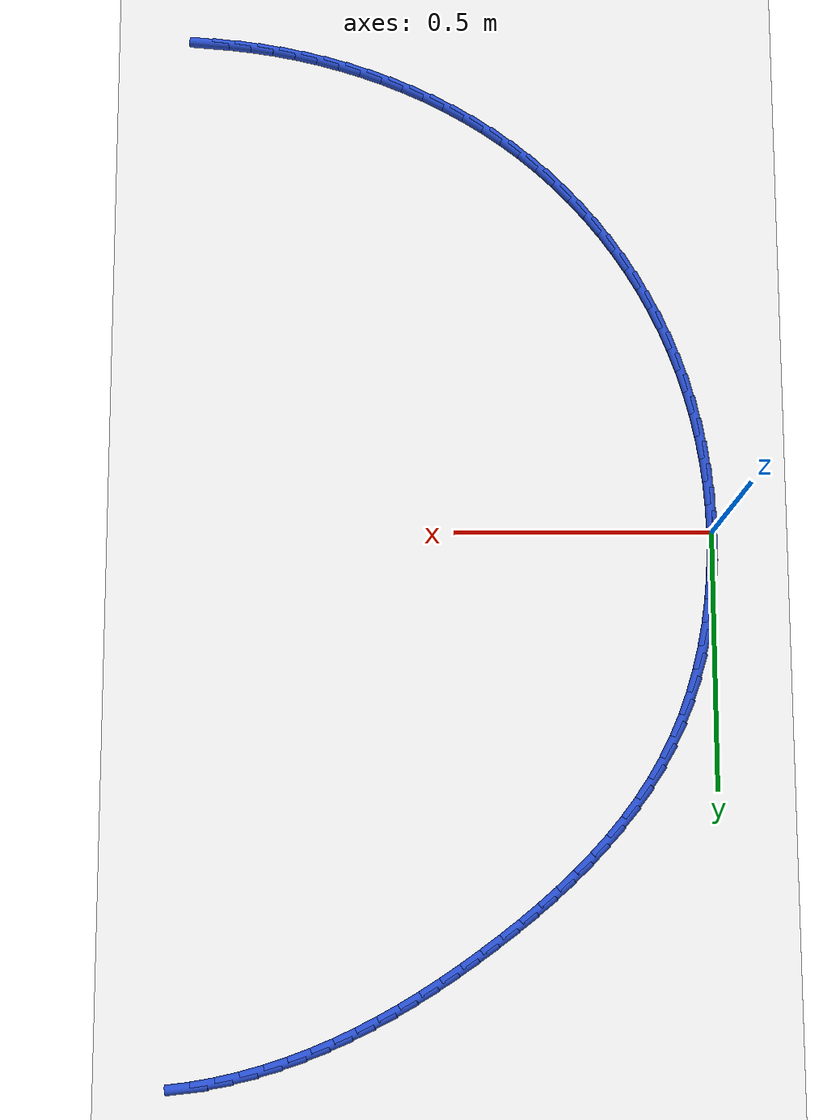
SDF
<sdf version="1.6">
 <world name="default">
  <model name="ground_plane">
   <static>1</static>
   <link name="link">
    <collision name="collision">
     <geometry><plane><normal>0 0 1</normal><size>100 100</size></plane></geometry>
     <surface><friction><ode><mu>100</mu><mu2>50</mu2></ode></friction></surface>
    </collision>
    <visual name="visual">
     <cast_shadows>0</cast_shadows>
     <geometry><plane><normal>0 0 1</normal><size>100 100</size></plane></geometry>
     <material>
      <script><uri>file://media/materials/scripts/gazebo.material</uri><name>Gazebo/WhiteGlow</name></script>
     </material>
    </visual>
   </link>
  </model>
  <model name="line">
   <link name="link_0">
    <pose>6.765421556309548e-17 2.7755575615628914e-17 0.01 0 1.57 1.5584884787986761</pose>
    <collision name="collision">
     <geometry><cylinder><radius>0.01</radius><length>0.08</length></cylinder></geometry>
    </collision>
    <visual name="visual">
     <material>
      <script><name>Gazebo/Blue</name><uri>file://media/materials/scripts/gazebo.material</uri></script>
     </material>
     <geometry><cylinder><radius>0.01</radius><length>0.08</length></cylinder></geometry>
    </visual>
   </link>
   <link name="link_1">
    <pose>0.0005716995542776566 0.046447655719377944 0.01 0 1.57 1.514196573088559</pose>
    <collision name="collision">
     <geometry><cylinder><radius>0.01</radius><length>0.08</length></cylinder></geometry>
    </collision>
    <visual name="visual">
     <material>
      <script><name>Gazebo/Blue</name><uri>file://media/materials/scripts/gazebo.material</uri></script>
     </material>
     <geometry><cylinder><radius>0.01</radius><length>0.08</length></cylinder></geometry>
    </visual>
   </link>
   <link name="link_2">
    <pose>0.0032023153459476506 0.0928755274340366 0.01 0 1.57 1.4686242328260348</pose>
    <collision name="collision">
     <geometry><cylinder><radius>0.01</radius><length>0.08</length></cylinder></geometry>
    </collision>
    <visual name="visual">
     <material>
      <script><name>Gazebo/Blue</name><uri>file://media/materials/scripts/gazebo.material</uri></script>
     </material>
     <geometry><cylinder><radius>0.01</radius><length>0.08</length></cylinder></geometry>
    </visual>
   </link>
   <link name="link_3">
    <pose>0.00794377737591002 0.1391205580400249 0.01 0 1.57 1.4214937126309368</pose>
    <collision name="collision">
     <geometry><cylinder><radius>0.01</radius><length>0.08</length></cylinder></geometry>
    </collision>
    <visual name="visual">
     <material>
      <script><name>Gazebo/Blue</name><uri>file://media/materials/scripts/gazebo.material</uri></script>
     </material>
     <geometry><cylinder><radius>0.01</radius><length>0.08</length></cylinder></geometry>
    </visual>
   </link>
   <link name="link_4">
    <pose>0.01484801564506474 0.18501969043339178 0.01 0 1.57 1.3725343054478156</pose>
    <collision name="collision">
     <geometry><cylinder><radius>0.01</radius><length>0.08</length></cylinder></geometry>
    </collision>
    <visual name="visual">
     <material>
      <script><name>Gazebo/Blue</name><uri>file://media/materials/scripts/gazebo.material</uri></script>
     </material>
     <geometry><cylinder><radius>0.01</radius><length>0.08</length></cylinder></geometry>
    </visual>
   </link>
   <link name="link_5">
    <pose>0.0239669601543118 0.2304098675101861 0.01 0 1.57 1.3214859028333439</pose>
    <collision name="collision">
     <geometry><cylinder><radius>0.01</radius><length>0.08</length></cylinder></geometry>
    </collision>
    <visual name="visual">
     <material>
      <script><name>Gazebo/Blue</name><uri>file://media/materials/scripts/gazebo.material</uri></script>
     </material>
     <geometry><cylinder><radius>0.01</radius><length>0.08</length></cylinder></geometry>
    </visual>
   </link>
   <link name="link_6">
    <pose>0.03535254090455118 0.27512803216645687 0.01 0 1.57 1.2681049622585925</pose>
    <collision name="collision">
     <geometry><cylinder><radius>0.01</radius><length>0.08</length></cylinder></geometry>
    </collision>
    <visual name="visual">
     <material>
      <script><name>Gazebo/Blue</name><uri>file://media/materials/scripts/gazebo.material</uri></script>
     </material>
     <geometry><cylinder><radius>0.01</radius><length>0.08</length></cylinder></geometry>
    </visual>
   </link>
   <link name="link_7">
    <pose>0.049056687896682855 0.31901112729825304 0.01 0 1.57 1.2121732647211978</pose>
    <collision name="collision">
     <geometry><cylinder><radius>0.01</radius><length>0.08</length></cylinder></geometry>
    </collision>
    <visual name="visual">
     <material>
      <script><name>Gazebo/Blue</name><uri>file://media/materials/scripts/gazebo.material</uri></script>
     </material>
     <geometry><cylinder><radius>0.01</radius><length>0.08</length></cylinder></geometry>
    </visual>
   </link>
   <link name="link_8">
    <pose>0.0651313311316068 0.36189609580162335 0.01 0 1.57 1.1535097312707923</pose>
    <collision name="collision">
     <geometry><cylinder><radius>0.01</radius><length>0.08</length></cylinder></geometry>
    </collision>
    <visual name="visual">
     <material>
      <script><name>Gazebo/Blue</name><uri>file://media/materials/scripts/gazebo.material</uri></script>
     </material>
     <geometry><cylinder><radius>0.01</radius><length>0.08</length></cylinder></geometry>
    </visual>
   </link>
   <link name="link_9">
    <pose>0.08362840061022302 0.403619880572617 0.01 0 1.57 1.0920042835123835</pose>
    <collision name="collision">
     <geometry><cylinder><radius>0.01</radius><length>0.08</length></cylinder></geometry>
    </collision>
    <visual name="visual">
     <material>
      <script><name>Gazebo/Blue</name><uri>file://media/materials/scripts/gazebo.material</uri></script>
     </material>
     <geometry><cylinder><radius>0.01</radius><length>0.08</length></cylinder></geometry>
    </visual>
   </link>
   <link name="link_10">
    <pose>0.10459915249809948 0.4440200023535437 0.01 0 1.57 1.0298332348828487</pose>
    <collision name="collision">
     <geometry><cylinder><radius>0.01</radius><length>0.08</length></cylinder></geometry>
    </collision>
    <visual name="visual">
     <material>
      <script><name>Gazebo/Blue</name><uri>file://media/materials/scripts/gazebo.material</uri></script>
     </material>
     <geometry><cylinder><radius>0.01</radius><length>0.08</length></cylinder></geometry>
    </visual>
   </link>
   <link name="link_11">
    <pose>0.12801661715924728 0.48300106428027234 0.01 0 1.57 0.9714010375299906</pose>
    <collision name="collision">
     <geometry><cylinder><radius>0.01</radius><length>0.08</length></cylinder></geometry>
    </collision>
    <visual name="visual">
     <material>
      <script><name>Gazebo/Blue</name><uri>file://media/materials/scripts/gazebo.material</uri></script>
     </material>
     <geometry><cylinder><radius>0.01</radius><length>0.08</length></cylinder></geometry>
    </visual>
   </link>
   <link name="link_12">
    <pose>0.15370364644644152 0.5205964547972824 0.01 0 1.57 0.9173242000535418</pose>
    <collision name="collision">
     <geometry><cylinder><radius>0.01</radius><length>0.08</length></cylinder></geometry>
    </collision>
    <visual name="visual">
     <material>
      <script><name>Gazebo/Blue</name><uri>file://media/materials/scripts/gazebo.material</uri></script>
     </material>
     <geometry><cylinder><radius>0.01</radius><length>0.08</length></cylinder></geometry>
    </visual>
   </link>
   <link name="link_13">
    <pose>0.18146607908762974 0.5568541519232436 0.01 0 1.57 0.8676171396973472</pose>
    <collision name="collision">
     <geometry><cylinder><radius>0.01</radius><length>0.08</length></cylinder></geometry>
    </collision>
    <visual name="visual">
     <material>
      <script><name>Gazebo/Blue</name><uri>file://media/materials/scripts/gazebo.material</uri></script>
     </material>
     <geometry><cylinder><radius>0.01</radius><length>0.08</length></cylinder></geometry>
    </visual>
   </link>
   <link name="link_14">
    <pose>0.21110975381075933 0.5918221336768252 0.01 0 1.57 0.8222029213232607</pose>
    <collision name="collision">
     <geometry><cylinder><radius>0.01</radius><length>0.08</length></cylinder></geometry>
    </collision>
    <visual name="visual">
     <material>
      <script><name>Gazebo/Blue</name><uri>file://media/materials/scripts/gazebo.material</uri></script>
     </material>
     <geometry><cylinder><radius>0.01</radius><length>0.08</length></cylinder></geometry>
    </visual>
   </link>
   <link name="link_15">
    <pose>0.2424405093437778 0.6255483780766966 0.01 0 1.57 0.7809427596734648</pose>
    <collision name="collision">
     <geometry><cylinder><radius>0.01</radius><length>0.08</length></cylinder></geometry>
    </collision>
    <visual name="visual">
     <material>
      <script><name>Gazebo/Blue</name><uri>file://media/materials/scripts/gazebo.material</uri></script>
     </material>
     <geometry><cylinder><radius>0.01</radius><length>0.08</length></cylinder></geometry>
    </visual>
   </link>
   <link name="link_16">
    <pose>0.27526418441463263 0.6580808631415275 0.01 0 1.57 0.7436613765094798</pose>
    <collision name="collision">
     <geometry><cylinder><radius>0.01</radius><length>0.08</length></cylinder></geometry>
    </collision>
    <visual name="visual">
     <material>
      <script><name>Gazebo/Blue</name><uri>file://media/materials/scripts/gazebo.material</uri></script>
     </material>
     <geometry><cylinder><radius>0.01</radius><length>0.08</length></cylinder></geometry>
    </visual>
   </link>
   <link name="link_17">
    <pose>0.309386617751271 0.6894675668899863 0.01 0 1.57 0.710167448398299</pose>
    <collision name="collision">
     <geometry><cylinder><radius>0.01</radius><length>0.08</length></cylinder></geometry>
    </collision>
    <visual name="visual">
     <material>
      <script><name>Gazebo/Blue</name><uri>file://media/materials/scripts/gazebo.material</uri></script>
     </material>
     <geometry><cylinder><radius>0.01</radius><length>0.08</length></cylinder></geometry>
    </visual>
   </link>
   <link name="link_18">
    <pose>0.34461364808164086 0.7197564673407438 0.01 0 1.57 0.6802693483953398</pose>
    <collision name="collision">
     <geometry><cylinder><radius>0.01</radius><length>0.08</length></cylinder></geometry>
    </collision>
    <visual name="visual">
     <material>
      <script><name>Gazebo/Blue</name><uri>file://media/materials/scripts/gazebo.material</uri></script>
     </material>
     <geometry><cylinder><radius>0.01</radius><length>0.08</length></cylinder></geometry>
    </visual>
   </link>
   <link name="link_19">
    <pose>0.38075111413368906 0.7489955425124685 0.01 0 1.57 0.6537868988125435</pose>
    <collision name="collision">
     <geometry><cylinder><radius>0.01</radius><length>0.08</length></cylinder></geometry>
    </collision>
    <visual name="visual">
     <material>
      <script><name>Gazebo/Blue</name><uri>file://media/materials/scripts/gazebo.material</uri></script>
     </material>
     <geometry><cylinder><radius>0.01</radius><length>0.08</length></cylinder></geometry>
    </visual>
   </link>
   <link name="link_20">
    <pose>0.4176048546353637 0.77723277042383 0.01 0 1.57 0.6305543245731808</pose>
    <collision name="collision">
     <geometry><cylinder><radius>0.01</radius><length>0.08</length></cylinder></geometry>
    </collision>
    <visual name="visual">
     <material>
      <script><name>Gazebo/Blue</name><uri>file://media/materials/scripts/gazebo.material</uri></script>
     </material>
     <geometry><cylinder><radius>0.01</radius><length>0.08</length></cylinder></geometry>
    </visual>
   </link>
   <link name="link_21">
    <pose>0.45498097439960244 0.8045159953283338 0.01 0 1.57 0.6088742742741762</pose>
    <collision name="collision">
     <geometry><cylinder><radius>0.01</radius><length>0.08</length></cylinder></geometry>
    </collision>
    <visual name="visual">
     <material>
      <script><name>Gazebo/Blue</name><uri>file://media/materials/scripts/gazebo.material</uri></script>
     </material>
     <geometry><cylinder><radius>0.01</radius><length>0.08</length></cylinder></geometry>
    </visual>
   </link>
   <link name="link_22">
    <pose>0.49275869448761056 0.8308563047766697 0.01 0 1.57 0.5850038427479485</pose>
    <collision name="collision">
     <geometry><cylinder><radius>0.01</radius><length>0.08</length></cylinder></geometry>
    </collision>
    <visual name="visual">
     <material>
      <script><name>Gazebo/Blue</name><uri>file://media/materials/scripts/gazebo.material</uri></script>
     </material>
     <geometry><cylinder><radius>0.01</radius><length>0.08</length></cylinder></geometry>
    </visual>
   </link>
   <link name="link_23">
    <pose>0.5309894540610389 0.8561782095368335 0.01 0 1.57 0.558423854053083</pose>
    <collision name="collision">
     <geometry><cylinder><radius>0.01</radius><length>0.08</length></cylinder></geometry>
    </collision>
    <visual name="visual">
     <material>
      <script><name>Gazebo/Blue</name><uri>file://media/materials/scripts/gazebo.material</uri></script>
     </material>
     <geometry><cylinder><radius>0.01</radius><length>0.08</length></cylinder></geometry>
    </visual>
   </link>
   <link name="link_24">
    <pose>0.5697494710328551 0.8803937637037849 0.01 0 1.57 0.5291740657783479</pose>
    <collision name="collision">
     <geometry><cylinder><radius>0.01</radius><length>0.08</length></cylinder></geometry>
    </collision>
    <visual name="visual">
     <material>
      <script><name>Gazebo/Blue</name><uri>file://media/materials/scripts/gazebo.material</uri></script>
     </material>
     <geometry><cylinder><radius>0.01</radius><length>0.08</length></cylinder></geometry>
    </visual>
   </link>
   <link name="link_25">
    <pose>0.6091149633160268 0.9034150213724829 0.01 0 1.57 0.4973256388814062</pose>
    <collision name="collision">
     <geometry><cylinder><radius>0.01</radius><length>0.08</length></cylinder></geometry>
    </collision>
    <visual name="visual">
     <material>
      <script><name>Gazebo/Blue</name><uri>file://media/materials/scripts/gazebo.material</uri></script>
     </material>
     <geometry><cylinder><radius>0.01</radius><length>0.08</length></cylinder></geometry>
    </visual>
   </link>
   <link name="link_26">
    <pose>0.6491621488235214 0.9251540366378873 0.01 0 1.57 0.46298626982880187</pose>
    <collision name="collision">
     <geometry><cylinder><radius>0.01</radius><length>0.08</length></cylinder></geometry>
    </collision>
    <visual name="visual">
     <material>
      <script><name>Gazebo/Blue</name><uri>file://media/materials/scripts/gazebo.material</uri></script>
     </material>
     <geometry><cylinder><radius>0.01</radius><length>0.08</length></cylinder></geometry>
    </visual>
   </link>
   <link name="link_27">
    <pose>0.6899672454683065 0.9455228635949577 0.01 0 1.57 0.42630445086969593</pose>
    <collision name="collision">
     <geometry><cylinder><radius>0.01</radius><length>0.08</length></cylinder></geometry>
    </collision>
    <visual name="visual">
     <material>
      <script><name>Gazebo/Blue</name><uri>file://media/materials/scripts/gazebo.material</uri></script>
     </material>
     <geometry><cylinder><radius>0.01</radius><length>0.08</length></cylinder></geometry>
    </visual>
   </link>
   <link name="link_28">
    <pose>0.7316064711633496 0.9644335563386531 0.01 0 1.57 0.38747223377658824</pose>
    <collision name="collision">
     <geometry><cylinder><radius>0.01</radius><length>0.08</length></cylinder></geometry>
    </collision>
    <visual name="visual">
     <material>
      <script><name>Gazebo/Blue</name><uri>file://media/materials/scripts/gazebo.material</uri></script>
     </material>
     <geometry><cylinder><radius>0.01</radius><length>0.08</length></cylinder></geometry>
    </visual>
   </link>
   <link name="link_29">
    <pose>0.7741560438216187 0.9817981689639338 0.01 0 1.57 0.3467258663415571</pose>
    <collision name="collision">
     <geometry><cylinder><radius>0.01</radius><length>0.08</length></cylinder></geometry>
    </collision>
    <visual name="visual">
     <material>
      <script><name>Gazebo/Blue</name><uri>file://media/materials/scripts/gazebo.material</uri></script>
     </material>
     <geometry><cylinder><radius>0.01</radius><length>0.08</length></cylinder></geometry>
    </visual>
   </link>
   <link name="link_30">
    <pose>0.817692181356081 0.9975287555657586 0.01 0 1.57 0.3043151685032217</pose>
    <collision name="collision">
     <geometry><cylinder><radius>0.01</radius><length>0.08</length></cylinder></geometry>
    </collision>
    <visual name="visual">
     <material>
      <script><name>Gazebo/Blue</name><uri>file://media/materials/scripts/gazebo.material</uri></script>
     </material>
     <geometry><cylinder><radius>0.01</radius><length>0.08</length></cylinder></geometry>
    </visual>
   </link>
   <link name="link_31">
    <pose>0.8622772089891256 1.0115316055564987 0.01 0 1.57 0.25993792252258</pose>
    <collision name="collision">
     <geometry><cylinder><radius>0.01</radius><length>0.08</length></cylinder></geometry>
    </collision>
    <visual name="visual">
     <material>
      <script><name>Gazebo/Blue</name><uri>file://media/materials/scripts/gazebo.material</uri></script>
     </material>
     <geometry><cylinder><radius>0.01</radius><length>0.08</length></cylinder></geometry>
    </visual>
   </link>
   <link name="link_32">
    <pose>0.9077838051237057 1.0236343156207328 0.01 0 1.57 0.21277090962695178</pose>
    <collision name="collision">
     <geometry><cylinder><radius>0.01</radius><length>0.08</length></cylinder></geometry>
    </collision>
    <visual name="visual">
     <material>
      <script><name>Gazebo/Blue</name><uri>file://media/materials/scripts/gazebo.material</uri></script>
     </material>
     <geometry><cylinder><radius>0.01</radius><length>0.08</length></cylinder></geometry>
    </visual>
   </link>
   <link name="link_33">
    <pose>0.9539474529796185 1.0336075541843197 0.01 0 1.57 0.16210223971566706</pose>
    <collision name="collision">
     <geometry><cylinder><radius>0.01</radius><length>0.08</length></cylinder></geometry>
    </collision>
    <visual name="visual">
     <material>
      <script><name>Gazebo/Blue</name><uri>file://media/materials/scripts/gazebo.material</uri></script>
     </material>
     <geometry><cylinder><radius>0.01</radius><length>0.08</length></cylinder></geometry>
    </visual>
   </link>
   <link name="link_34">
    <pose>1.0005005793275596 1.041220721419223 0.01 0 1.57 0.10719316870362879</pose>
    <collision name="collision">
     <geometry><cylinder><radius>0.01</radius><length>0.08</length></cylinder></geometry>
    </collision>
    <visual name="visual">
     <material>
      <script><name>Gazebo/Blue</name><uri>file://media/materials/scripts/gazebo.material</uri></script>
     </material>
     <geometry><cylinder><radius>0.01</radius><length>0.08</length></cylinder></geometry>
    </visual>
   </link>
   <link name="link_106">
    <pose>0.9918737640069699 -1.0101326525676588 0.01 0 1.57 -0.0922083817403454</pose>
    <collision name="collision">
     <geometry><cylinder><radius>0.01</radius><length>0.08</length></cylinder></geometry>
    </collision>
    <visual name="visual">
     <material>
      <script><name>Gazebo/Blue</name><uri>file://media/materials/scripts/gazebo.material</uri></script>
     </material>
     <geometry><cylinder><radius>0.01</radius><length>0.08</length></cylinder></geometry>
    </visual>
   </link>
   <link name="link_107">
    <pose>0.9464507135088506 -1.00593235565303 0.01 0 1.57 -0.12867127690022864</pose>
    <collision name="collision">
     <geometry><cylinder><radius>0.01</radius><length>0.08</length></cylinder></geometry>
    </collision>
    <visual name="visual">
     <material>
      <script><name>Gazebo/Blue</name><uri>file://media/materials/scripts/gazebo.material</uri></script>
     </material>
     <geometry><cylinder><radius>0.01</radius><length>0.08</length></cylinder></geometry>
    </visual>
   </link>
   <link name="link_108">
    <pose>0.901238054061773 -1.0000824651641207 0.01 0 1.57 -0.16558685324487885</pose>
    <collision name="collision">
     <geometry><cylinder><radius>0.01</radius><length>0.08</length></cylinder></geometry>
    </collision>
    <visual name="visual">
     <material>
      <script><name>Gazebo/Blue</name><uri>file://media/materials/scripts/gazebo.material</uri></script>
     </material>
     <geometry><cylinder><radius>0.01</radius><length>0.08</length></cylinder></geometry>
    </visual>
   </link>
   <link name="link_109">
    <pose>0.8562546438480023 -0.9925649704866657 0.01 0 1.57 -0.20289295668992488</pose>
    <collision name="collision">
     <geometry><cylinder><radius>0.01</radius><length>0.08</length></cylinder></geometry>
    </collision>
    <visual name="visual">
     <material>
      <script><name>Gazebo/Blue</name><uri>file://media/materials/scripts/gazebo.material</uri></script>
     </material>
     <geometry><cylinder><radius>0.01</radius><length>0.08</length></cylinder></geometry>
    </visual>
   </link>
   <link name="link_110">
    <pose>0.8115193410498068 -0.9833618610064019 0.01 0 1.57 -0.24052739656056135</pose>
    <collision name="collision">
     <geometry><cylinder><radius>0.01</radius><length>0.08</length></cylinder></geometry>
    </collision>
    <visual name="visual">
     <material>
      <script><name>Gazebo/Blue</name><uri>file://media/materials/scripts/gazebo.material</uri></script>
     </material>
     <geometry><cylinder><radius>0.01</radius><length>0.08</length></cylinder></geometry>
    </visual>
   </link>
   <link name="link_111">
    <pose>0.767052962332259 -0.972455336381458 0.01 0 1.57 -0.2785870254189277</pose>
    <collision name="collision">
     <geometry><cylinder><radius>0.01</radius><length>0.08</length></cylinder></geometry>
    </collision>
    <visual name="visual">
     <material>
      <script><name>Gazebo/Blue</name><uri>file://media/materials/scripts/gazebo.material</uri></script>
     </material>
     <geometry><cylinder><radius>0.01</radius><length>0.08</length></cylinder></geometry>
    </visual>
   </link>
   <link name="link_112">
    <pose>0.722920479572253 -0.9598323369917562 0.01 0 1.57 -0.31730537546316695</pose>
    <collision name="collision">
     <geometry><cylinder><radius>0.01</radius><length>0.08</length></cylinder></geometry>
    </collision>
    <visual name="visual">
     <material>
      <script><name>Gazebo/Blue</name><uri>file://media/materials/scripts/gazebo.material</uri></script>
     </material>
     <geometry><cylinder><radius>0.01</radius><length>0.08</length></cylinder></geometry>
    </visual>
   </link>
   <link name="link_113">
    <pose>0.6792305310600384 -0.9454844914591907 0.01 0 1.57 -0.3568287303730155</pose>
    <collision name="collision">
     <geometry><cylinder><radius>0.01</radius><length>0.08</length></cylinder></geometry>
    </collision>
    <visual name="visual">
     <material>
      <script><name>Gazebo/Blue</name><uri>file://media/materials/scripts/gazebo.material</uri></script>
     </material>
     <geometry><cylinder><radius>0.01</radius><length>0.08</length></cylinder></geometry>
    </visual>
   </link>
   <link name="link_114">
    <pose>0.6360936158051831 -0.929403628181678 0.01 0 1.57 -0.39729234931789803</pose>
    <collision name="collision">
     <geometry><cylinder><radius>0.01</radius><length>0.08</length></cylinder></geometry>
    </collision>
    <visual name="visual">
     <material>
      <script><name>Gazebo/Blue</name><uri>file://media/materials/scripts/gazebo.material</uri></script>
     </material>
     <geometry><cylinder><radius>0.01</radius><length>0.08</length></cylinder></geometry>
    </visual>
   </link>
   <link name="link_115">
    <pose>0.593620232817254 -0.9115815755571359 0.01 0 1.57 -0.4388248785399798</pose>
    <collision name="collision">
     <geometry><cylinder><radius>0.01</radius><length>0.08</length></cylinder></geometry>
    </collision>
    <visual name="visual">
     <material>
      <script><name>Gazebo/Blue</name><uri>file://media/materials/scripts/gazebo.material</uri></script>
     </material>
     <geometry><cylinder><radius>0.01</radius><length>0.08</length></cylinder></geometry>
    </visual>
   </link>
   <link name="link_116">
    <pose>0.5519208811058179 -0.892010161983481 0.01 0 1.57 -0.4815467858490299</pose>
    <collision name="collision">
     <geometry><cylinder><radius>0.01</radius><length>0.08</length></cylinder></geometry>
    </collision>
    <visual name="visual">
     <material>
      <script><name>Gazebo/Blue</name><uri>file://media/materials/scripts/gazebo.material</uri></script>
     </material>
     <geometry><cylinder><radius>0.01</radius><length>0.08</length></cylinder></geometry>
    </visual>
   </link>
   <link name="link_117">
    <pose>0.5111060596804418 -0.8706812158586301 0.01 0 1.57 -0.5255682121936127</pose>
    <collision name="collision">
     <geometry><cylinder><radius>0.01</radius><length>0.08</length></cylinder></geometry>
    </collision>
    <visual name="visual">
     <material>
      <script><name>Gazebo/Blue</name><uri>file://media/materials/scripts/gazebo.material</uri></script>
     </material>
     <geometry><cylinder><radius>0.01</radius><length>0.08</length></cylinder></geometry>
    </visual>
   </link>
   <link name="link_118">
    <pose>0.4712862675506938 -0.8475865655805009 0.01 0 1.57 -0.5709862077385627</pose>
    <collision name="collision">
     <geometry><cylinder><radius>0.01</radius><length>0.08</length></cylinder></geometry>
    </collision>
    <visual name="visual">
     <material>
      <script><name>Gazebo/Blue</name><uri>file://media/materials/scripts/gazebo.material</uri></script>
     </material>
     <geometry><cylinder><radius>0.01</radius><length>0.08</length></cylinder></geometry>
    </visual>
   </link>
   <link name="link_119">
    <pose>0.4325720037261404 -0.8227180395470101 0.01 0 1.57 -0.6178813507852062</pose>
    <collision name="collision">
     <geometry><cylinder><radius>0.01</radius><length>0.08</length></cylinder></geometry>
    </collision>
    <visual name="visual">
     <material>
      <script><name>Gazebo/Blue</name><uri>file://media/materials/scripts/gazebo.material</uri></script>
     </material>
     <geometry><cylinder><radius>0.01</radius><length>0.08</length></cylinder></geometry>
    </visual>
   </link>
   <link name="link_120">
    <pose>0.39507376721634924 -0.7960674661560752 0.01 0 1.57 -0.6662657096013984</pose>
    <collision name="collision">
     <geometry><cylinder><radius>0.01</radius><length>0.08</length></cylinder></geometry>
    </collision>
    <visual name="visual">
     <material>
      <script><name>Gazebo/Blue</name><uri>file://media/materials/scripts/gazebo.material</uri></script>
     </material>
     <geometry><cylinder><radius>0.01</radius><length>0.08</length></cylinder></geometry>
    </visual>
   </link>
   <link name="link_121">
    <pose>0.3589010640158945 -0.7676287077019985 0.01 0 1.57 -0.7150397960624684</pose>
    <collision name="collision">
     <geometry><cylinder><radius>0.01</radius><length>0.08</length></cylinder></geometry>
    </collision>
    <visual name="visual">
     <material>
      <script><name>Gazebo/Blue</name><uri>file://media/materials/scripts/gazebo.material</uri></script>
     </material>
     <geometry><cylinder><radius>0.01</radius><length>0.08</length></cylinder></geometry>
    </visual>
   </link>
   <link name="link_122">
    <pose>0.32413963040158167 -0.7374443116886977 0.01 0 1.57 -0.7631219886298676</pose>
    <collision name="collision">
     <geometry><cylinder><radius>0.01</radius><length>0.08</length></cylinder></geometry>
    </collision>
    <visual name="visual">
     <material>
      <script><name>Gazebo/Blue</name><uri>file://media/materials/scripts/gazebo.material</uri></script>
     </material>
     <geometry><cylinder><radius>0.01</radius><length>0.08</length></cylinder></geometry>
    </visual>
   </link>
   <link name="link_123">
    <pose>0.2908509042732097 -0.705606593631201 0.01 0 1.57 -0.810576883504063</pose>
    <collision name="collision">
     <geometry><cylinder><radius>0.01</radius><length>0.08</length></cylinder></geometry>
    </collision>
    <visual name="visual">
     <material>
      <script><name>Gazebo/Blue</name><uri>file://media/materials/scripts/gazebo.material</uri></script>
     </material>
     <geometry><cylinder><radius>0.01</radius><length>0.08</length></cylinder></geometry>
    </visual>
   </link>
   <link name="link_124">
    <pose>0.2590952247676965 -0.672210119534069 0.01 0 1.57 -0.8575299025621018</pose>
    <collision name="collision">
     <geometry><cylinder><radius>0.01</radius><length>0.08</length></cylinder></geometry>
    </collision>
    <visual name="visual">
     <material>
      <script><name>Gazebo/Blue</name><uri>file://media/materials/scripts/gazebo.material</uri></script>
     </material>
     <geometry><cylinder><radius>0.01</radius><length>0.08</length></cylinder></geometry>
    </visual>
   </link>
   <link name="link_125">
    <pose>0.22893293102196083 -0.6373494554018634 0.01 0 1.57 -0.9041122003804417</pose>
    <collision name="collision">
     <geometry><cylinder><radius>0.01</radius><length>0.08</length></cylinder></geometry>
    </collision>
    <visual name="visual">
     <material>
      <script><name>Gazebo/Blue</name><uri>file://media/materials/scripts/gazebo.material</uri></script>
     </material>
     <geometry><cylinder><radius>0.01</radius><length>0.08</length></cylinder></geometry>
    </visual>
   </link>
   <link name="link_126">
    <pose>0.20042436217292087 -0.6011191672391445 0.01 0 1.57 -0.9504590680720366</pose>
    <collision name="collision">
     <geometry><cylinder><radius>0.01</radius><length>0.08</length></cylinder></geometry>
    </collision>
    <visual name="visual">
     <material>
      <script><name>Gazebo/Blue</name><uri>file://media/materials/scripts/gazebo.material</uri></script>
     </material>
     <geometry><cylinder><radius>0.01</radius><length>0.08</length></cylinder></geometry>
    </visual>
   </link>
   <link name="link_127">
    <pose>0.17362985735749636 -0.5636138210504752 0.01 0 1.57 -0.996708558047735</pose>
    <collision name="collision">
     <geometry><cylinder><radius>0.01</radius><length>0.08</length></cylinder></geometry>
    </collision>
    <visual name="visual">
     <material>
      <script><name>Gazebo/Blue</name><uri>file://media/materials/scripts/gazebo.material</uri></script>
     </material>
     <geometry><cylinder><radius>0.01</radius><length>0.08</length></cylinder></geometry>
    </visual>
   </link>
   <link name="link_128">
    <pose>0.14860975571260546 -0.5249279828404156 0.01 0 1.57 -1.0430002539706926</pose>
    <collision name="collision">
     <geometry><cylinder><radius>0.01</radius><length>0.08</length></cylinder></geometry>
    </collision>
    <visual name="visual">
     <material>
      <script><name>Gazebo/Blue</name><uri>file://media/materials/scripts/gazebo.material</uri></script>
     </material>
     <geometry><cylinder><radius>0.01</radius><length>0.08</length></cylinder></geometry>
    </visual>
   </link>
   <link name="link_129">
    <pose>0.12542439637516692 -0.4851562186135279 0.01 0 1.57 -1.0894741049973704</pose>
    <collision name="collision">
     <geometry><cylinder><radius>0.01</radius><length>0.08</length></cylinder></geometry>
    </collision>
    <visual name="visual">
     <material>
      <script><name>Gazebo/Blue</name><uri>file://media/materials/scripts/gazebo.material</uri></script>
     </material>
     <geometry><cylinder><radius>0.01</radius><length>0.08</length></cylinder></geometry>
    </visual>
   </link>
   <link name="link_130">
    <pose>0.10413411848209937 -0.4443930943743729 0.01 0 1.57 -1.1362044277333718</pose>
    <collision name="collision">
     <geometry><cylinder><radius>0.01</radius><length>0.08</length></cylinder></geometry>
    </collision>
    <visual name="visual">
     <material>
      <script><name>Gazebo/Blue</name><uri>file://media/materials/scripts/gazebo.material</uri></script>
     </material>
     <geometry><cylinder><radius>0.01</radius><length>0.08</length></cylinder></geometry>
    </visual>
   </link>
   <link name="link_131">
    <pose>0.0847953466997768 -0.40273181315551915 0.01 0 1.57 -1.182721198508456</pose>
    <collision name="collision">
     <geometry><cylinder><radius>0.01</radius><length>0.08</length></cylinder></geometry>
    </collision>
    <visual name="visual">
     <material>
      <script><name>Gazebo/Blue</name><uri>file://media/materials/scripts/gazebo.material</uri></script>
     </material>
     <geometry><cylinder><radius>0.01</radius><length>0.08</length></cylinder></geometry>
    </visual>
   </link>
   <link name="link_132">
    <pose>0.06742995182133785 -0.3602535467426775 0.01 0 1.57 -1.2287513706504858</pose>
    <collision name="collision">
     <geometry><cylinder><radius>0.01</radius><length>0.08</length></cylinder></geometry>
    </collision>
    <visual name="visual">
     <material>
      <script><name>Gazebo/Blue</name><uri>file://media/materials/scripts/gazebo.material</uri></script>
     </material>
     <geometry><cylinder><radius>0.01</radius><length>0.08</length></cylinder></geometry>
    </visual>
   </link>
   <link name="link_133">
    <pose>0.0520418060300755 -0.31703320002011 0.01 0 1.57 -1.2743112282381157</pose>
    <collision name="collision">
     <geometry><cylinder><radius>0.01</radius><length>0.08</length></cylinder></geometry>
    </collision>
    <visual name="visual">
     <material>
      <script><name>Gazebo/Blue</name><uri>file://media/materials/scripts/gazebo.material</uri></script>
     </material>
     <geometry><cylinder><radius>0.01</radius><length>0.08</length></cylinder></geometry>
    </visual>
   </link>
   <link name="link_134">
    <pose>0.03863462646965424 -0.2731456238891283 0.01 0 1.57 -1.3194270497438014</pose>
    <collision name="collision">
     <geometry><cylinder><radius>0.01</radius><length>0.08</length></cylinder></geometry>
    </collision>
    <visual name="visual">
     <material>
      <script><name>Gazebo/Blue</name><uri>file://media/materials/scripts/gazebo.material</uri></script>
     </material>
     <geometry><cylinder><radius>0.01</radius><length>0.08</length></cylinder></geometry>
    </visual>
   </link>
   <link name="link_135">
    <pose>0.02721213028373838 -0.22866566925104365 0.01 0 1.57 -1.3641314217889629</pose>
    <collision name="collision">
     <geometry><cylinder><radius>0.01</radius><length>0.08</length></cylinder></geometry>
    </collision>
    <visual name="visual">
     <material>
      <script><name>Gazebo/Blue</name><uri>file://media/materials/scripts/gazebo.material</uri></script>
     </material>
     <geometry><cylinder><radius>0.01</radius><length>0.08</length></cylinder></geometry>
    </visual>
   </link>
   <link name="link_136">
    <pose>0.017778034615992745 -0.18366818700716908 0.01 0 1.57 -1.4084621330286582</pose>
    <collision name="collision">
     <geometry><cylinder><radius>0.01</radius><length>0.08</length></cylinder></geometry>
    </collision>
    <visual name="visual">
     <material>
      <script><name>Gazebo/Blue</name><uri>file://media/materials/scripts/gazebo.material</uri></script>
     </material>
     <geometry><cylinder><radius>0.01</radius><length>0.08</length></cylinder></geometry>
    </visual>
   </link>
   <link name="link_137">
    <pose>0.010336056610081634 -0.1382280280588158 0.01 0 1.57 -1.4524611004099774</pose>
    <collision name="collision">
     <geometry><cylinder><radius>0.01</radius><length>0.08</length></cylinder></geometry>
    </collision>
    <visual name="visual">
     <material>
      <script><name>Gazebo/Blue</name><uri>file://media/materials/scripts/gazebo.material</uri></script>
     </material>
     <geometry><cylinder><radius>0.01</radius><length>0.08</length></cylinder></geometry>
    </visual>
   </link>
   <link name="link_138">
    <pose>0.004889913409669493 -0.0924200433072954 0.01 0 1.57 -1.496173339564622</pose>
    <collision name="collision">
     <geometry><cylinder><radius>0.01</radius><length>0.08</length></cylinder></geometry>
    </collision>
    <visual name="visual">
     <material>
      <script><name>Gazebo/Blue</name><uri>file://media/materials/scripts/gazebo.material</uri></script>
     </material>
     <geometry><cylinder><radius>0.01</radius><length>0.08</length></cylinder></geometry>
    </visual>
   </link>
   <link name="link_139">
    <pose>0.0014433221584208107 -0.04631908365391975 0.01 0 1.57 -1.5396459849739814</pose>
    <collision name="collision">
     <geometry><cylinder><radius>0.01</radius><length>0.08</length></cylinder></geometry>
    </collision>
    <visual name="visual">
     <material>
      <script><name>Gazebo/Blue</name><uri>file://media/materials/scripts/gazebo.material</uri></script>
     </material>
     <geometry><cylinder><radius>0.01</radius><length>0.08</length></cylinder></geometry>
    </visual>
   </link>
   <link name="link_140">
    <pose>4.85722573273506e-17 1.8041124150158794e-16 0.01 0 1.57 1.5586652928307767</pose>
    <collision name="collision">
     <geometry><cylinder><radius>0.01</radius><length>0.08</length></cylinder></geometry>
    </collision>
    <visual name="visual">
     <material>
      <script><name>Gazebo/Blue</name><uri>file://media/materials/scripts/gazebo.material</uri></script>
     </material>
     <geometry><cylinder><radius>0.01</radius><length>0.08</length></cylinder></geometry>
    </visual>
   </link>
   <link name="link_141">
    <pose>0.0005636640780717229 0.046462356753151156 0.01 0 1.57 1.5586652928307771</pose>
    <collision name="collision">
     <geometry><cylinder><radius>0.01</radius><length>0.08</length></cylinder></geometry>
    </collision>
    <visual name="visual">
     <material>
      <script><name>Gazebo/Blue</name><uri>file://media/materials/scripts/gazebo.material</uri></script>
     </material>
     <geometry><cylinder><radius>0.01</radius><length>0.08</length></cylinder></geometry>
    </visual>
   </link>
  </model>
 </world>
</sdf>
